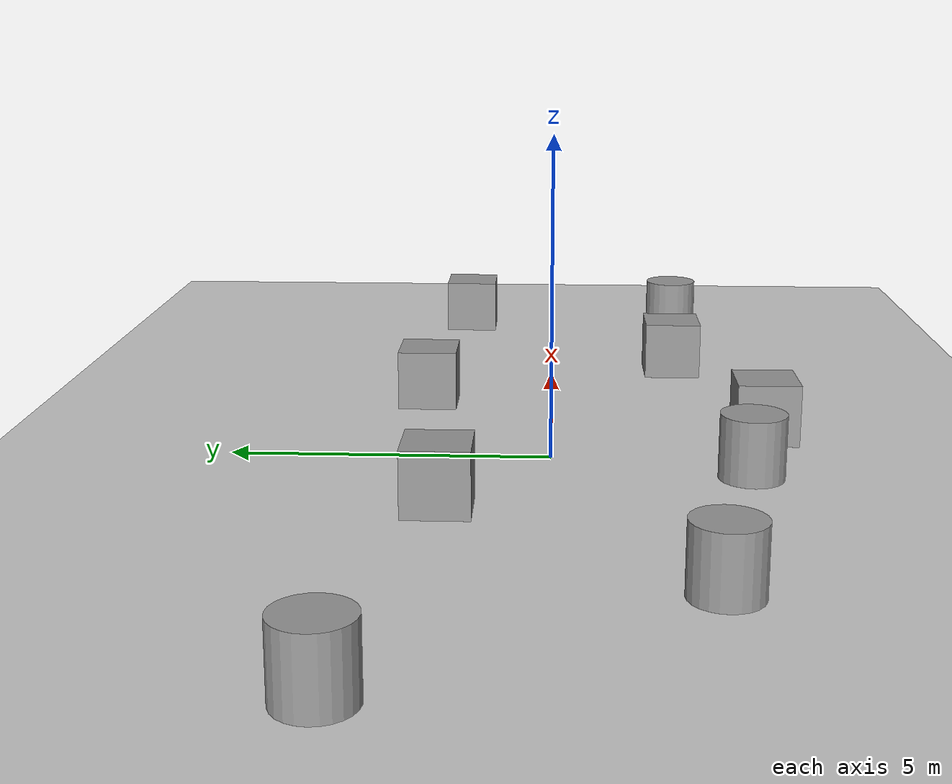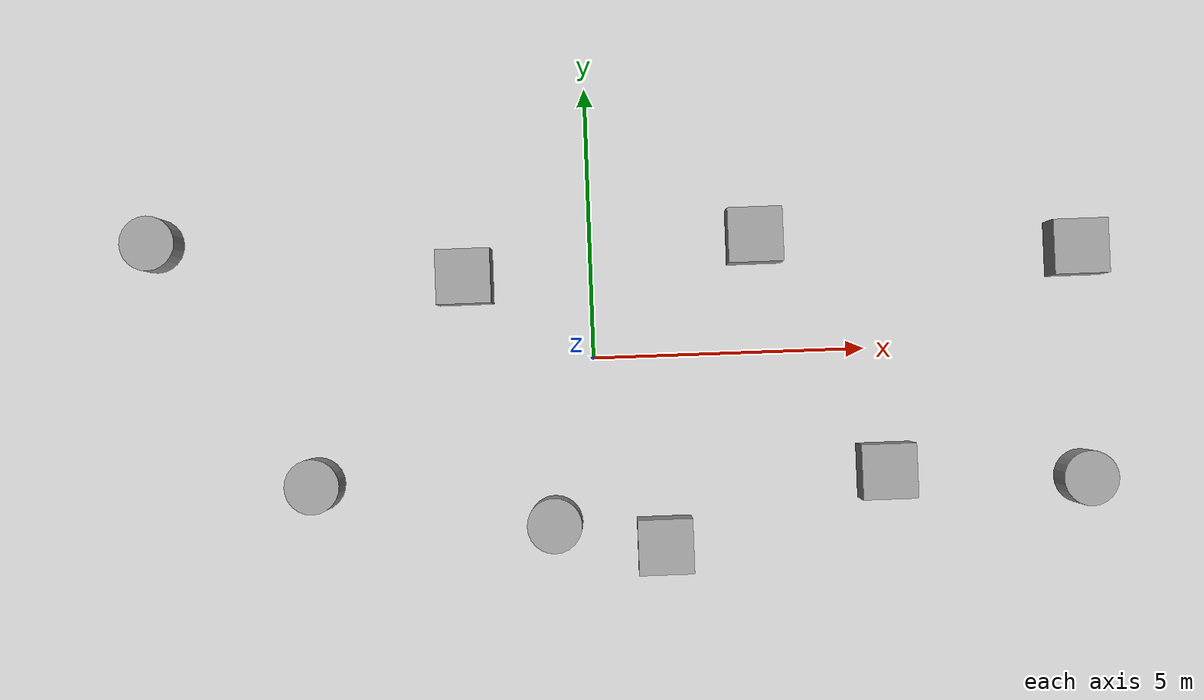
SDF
<sdf version="1.6">
 <world name="default">
  <include><uri>model://ground_plane</uri></include>
  <include><uri>model://sun</uri></include>
  <model name="unit_box">
   <pose>1.18183 -3.45008 0.5 0 -0 0</pose>
   <link name="link">
    <inertial>
     <mass>1</mass>
     <inertia>
      <ixx>0.166667</ixx>
      <ixy>0</ixy>
      <ixz>0</ixz>
      <iyy>0.166667</iyy>
      <iyz>0</iyz>
      <izz>0.166667</izz>
     </inertia>
    </inertial>
    <collision name="collision"><geometry><box><size>1 1 1</size></box></geometry></collision>
    <visual name="visual">
     <geometry><box><size>1 1 1</size></box></geometry>
     <material>
      <script><name>Gazebo/Grey</name><uri>file://media/materials/scripts/gazebo.material</uri></script>
     </material>
    </visual>
   </link>
  </model>
  <model name="unit_box_0">
   <pose>3.01771 2.14012 0.5 0 -0 0</pose>
   <link name="link">
    <inertial>
     <mass>1</mass>
     <inertia>
      <ixx>0.166667</ixx>
      <ixy>0</ixy>
      <ixz>0</ixz>
      <iyy>0.166667</iyy>
      <iyz>0</iyz>
      <izz>0.166667</izz>
     </inertia>
    </inertial>
    <collision name="collision"><geometry><box><size>1 1 1</size></box></geometry></collision>
    <visual name="visual">
     <geometry><box><size>1 1 1</size></box></geometry>
     <material>
      <script><name>Gazebo/Grey</name><uri>file://media/materials/scripts/gazebo.material</uri></script>
     </material>
    </visual>
   </link>
  </model>
  <model name="unit_cylinder">
   <pose>-5.17849 -2.13278 0.5 0 -0 0</pose>
   <link name="link">
    <inertial>
     <mass>1</mass>
     <inertia><ixx>0.145833</ixx><ixy>0</ixy><ixz>0</ixz><iyy>0.145833</iyy><iyz>0</iyz><izz>0.125</izz></inertia>
    </inertial>
    <collision name="collision">
     <geometry><cylinder><radius>0.5</radius><length>1</length></cylinder></geometry>
    </collision>
    <visual name="visual">
     <geometry><cylinder><radius>0.5</radius><length>1</length></cylinder></geometry>
     <material>
      <script><name>Gazebo/Grey</name><uri>file://media/materials/scripts/gazebo.material</uri></script>
     </material>
    </visual>
   </link>
  </model>
  <model name="unit_box_1">
   <pose>5.27667 -2.2416 0.5 0 -0 0</pose>
   <link name="link">
    <inertial>
     <mass>1</mass>
     <inertia>
      <ixx>0.166667</ixx>
      <ixy>0</ixy>
      <ixz>0</ixz>
      <iyy>0.166667</iyy>
      <iyz>0</iyz>
      <izz>0.166667</izz>
     </inertia>
    </inertial>
    <collision name="collision"><geometry><box><size>1 1 1</size></box></geometry></collision>
    <visual name="visual">
     <geometry><box><size>1 1 1</size></box></geometry>
     <material>
      <script><name>Gazebo/Grey</name><uri>file://media/materials/scripts/gazebo.material</uri></script>
     </material>
    </visual>
   </link>
  </model>
  <model name="unit_box_2">
   <pose>-2.31415 1.58016 0.5 0 -0 0</pose>
   <link name="link">
    <inertial>
     <mass>1</mass>
     <inertia>
      <ixx>0.166667</ixx>
      <ixy>0</ixy>
      <ixz>0</ixz>
      <iyy>0.166667</iyy>
      <iyz>0</iyz>
      <izz>0.166667</izz>
     </inertia>
    </inertial>
    <collision name="collision"><geometry><box><size>1 1 1</size></box></geometry></collision>
    <visual name="visual">
     <geometry><box><size>1 1 1</size></box></geometry>
     <material>
      <script><name>Gazebo/Grey</name><uri>file://media/materials/scripts/gazebo.material</uri></script>
     </material>
    </visual>
   </link>
  </model>
  <model name="unit_cylinder_0">
   <pose>-8.0239 2.38834 0.5 0 -0 0</pose>
   <link name="link">
    <inertial>
     <mass>1</mass>
     <inertia><ixx>0.145833</ixx><ixy>0</ixy><ixz>0</ixz><iyy>0.145833</iyy><iyz>0</iyz><izz>0.125</izz></inertia>
    </inertial>
    <collision name="collision">
     <geometry><cylinder><radius>0.5</radius><length>1</length></cylinder></geometry>
    </collision>
    <visual name="visual">
     <geometry><cylinder><radius>0.5</radius><length>1</length></cylinder></geometry>
     <material>
      <script><name>Gazebo/Grey</name><uri>file://media/materials/scripts/gazebo.material</uri></script>
     </material>
    </visual>
   </link>
  </model>
  <model name="unit_cylinder_1">
   <pose>-0.81415 -2.99602 0.5 0 -0 0</pose>
   <link name="link">
    <inertial>
     <mass>1</mass>
     <inertia><ixx>0.145833</ixx><ixy>0</ixy><ixz>0</ixz><iyy>0.145833</iyy><iyz>0</iyz><izz>0.125</izz></inertia>
    </inertial>
    <collision name="collision">
     <geometry><cylinder><radius>0.5</radius><length>1</length></cylinder></geometry>
    </collision>
    <visual name="visual">
     <geometry><cylinder><radius>0.5</radius><length>1</length></cylinder></geometry>
     <material>
      <script><name>Gazebo/Grey</name><uri>file://media/materials/scripts/gazebo.material</uri></script>
     </material>
    </visual>
   </link>
  </model>
  <model name="unit_cylinder_1">
   <pose>8.91685 -2.5 0.5 0 -0 0</pose>
   <link name="link">
    <inertial>
     <mass>1</mass>
     <inertia><ixx>0.145833</ixx><ixy>0</ixy><ixz>0</ixz><iyy>0.145833</iyy><iyz>0</iyz><izz>0.125</izz></inertia>
    </inertial>
    <collision name="collision">
     <geometry><cylinder><radius>0.5</radius><length>1</length></cylinder></geometry>
    </collision>
    <visual name="visual">
     <geometry><cylinder><radius>0.5</radius><length>1</length></cylinder></geometry>
     <material>
      <script><name>Gazebo/Grey</name><uri>file://media/materials/scripts/gazebo.material</uri></script>
     </material>
    </visual>
   </link>
  </model>
  <model name="unit_box_3">
   <pose>8.91685 1.705131 0.5 0 -0 0</pose>
   <link name="link">
    <inertial>
     <mass>1</mass>
     <inertia>
      <ixx>0.166667</ixx>
      <ixy>0</ixy>
      <ixz>0</ixz>
      <iyy>0.166667</iyy>
      <iyz>0</iyz>
      <izz>0.166667</izz>
     </inertia>
    </inertial>
    <collision name="collision"><geometry><box><size>1 1 1</size></box></geometry></collision>
    <visual name="visual">
     <geometry><box><size>1 1 1</size></box></geometry>
     <material>
      <script><name>Gazebo/Grey</name><uri>file://media/materials/scripts/gazebo.material</uri></script>
     </material>
    </visual>
   </link>
  </model>
 </world>
</sdf>
